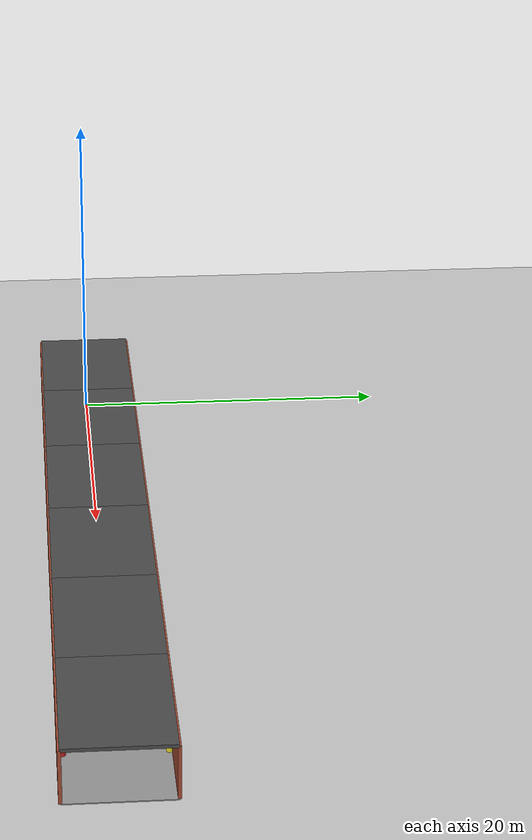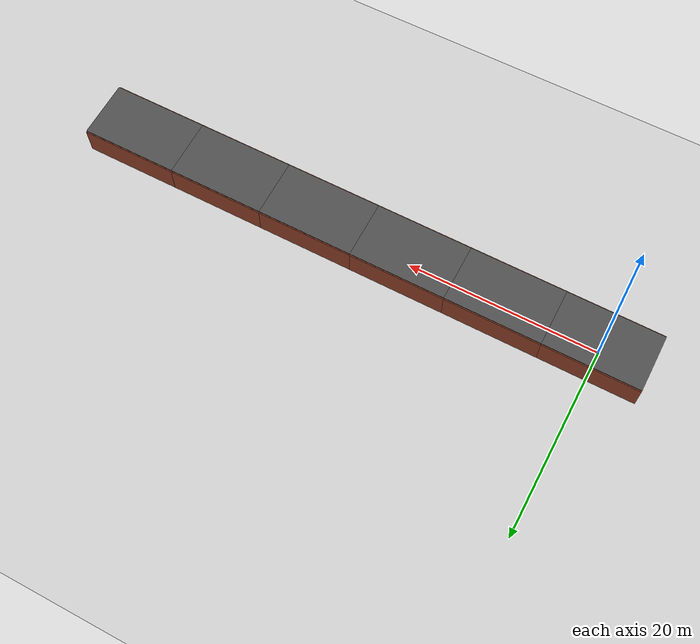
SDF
<sdf version="1.6">
 <world name="tunnel_innovation">
  <include><uri>model://ground_plane</uri></include>
  <model name="segment_0">
   <static>true</static>
   <link name="link">
    <light name="lamp_0" type="point">
     <pose>0 0 2.5 0 0 0</pose>
     <diffuse>0.9 0.9 0.9 1</diffuse>
     <attenuation><range>15</range><constant>0.5</constant></attenuation>
    </light>
    <collision name="floor"><geometry><box><size>10 6 0.2</size></box></geometry></collision>
    <visual name="floor">
     <pose>0 0 -0.1 0 0 0</pose>
     <geometry><box><size>10 6 0.2</size></box></geometry>
     <material>
      <script><uri>file://media/materials/scripts/gazebo.material</uri><name>Gazebo/Grey</name></script>
     </material>
    </visual>
    <visual name="roof">
     <pose>0 0 3.0 0 0 0</pose>
     <geometry><box><size>10 6 0.2</size></box></geometry>
     <material>
      <script><uri>file://media/materials/scripts/gazebo.material</uri><name>Gazebo/DarkGrey</name></script>
     </material>
    </visual>
    <visual name="wall_l">
     <pose>0 3 1.5 0 0 0</pose>
     <geometry><box><size>10 0.2 3</size></box></geometry>
     <material>
      <script><uri>file://media/materials/scripts/gazebo.material</uri><name>Gazebo/Bricks</name></script>
     </material>
    </visual>
    <visual name="wall_r">
     <pose>0 -3 1.5 0 0 0</pose>
     <geometry><box><size>10 0.2 3</size></box></geometry>
     <material>
      <script><uri>file://media/materials/scripts/gazebo.material</uri><name>Gazebo/Bricks</name></script>
     </material>
    </visual>
    <visual name="pillar_l">
     <pose>0 2.8 1.5 0 0 0</pose>
     <geometry><cylinder><radius>0.2</radius><length>3</length></cylinder></geometry>
     <material>
      <script><uri>file://media/materials/scripts/gazebo.material</uri><name>Gazebo/Yellow</name></script>
     </material>
    </visual>
    <visual name="pillar_r">
     <pose>0 -2.8 1.5 0 0 0</pose>
     <geometry><cylinder><radius>0.2</radius><length>3</length></cylinder></geometry>
     <material>
      <script><uri>file://media/materials/scripts/gazebo.material</uri><name>Gazebo/Yellow</name></script>
     </material>
    </visual>
   </link>
  </model>
  <model name="segment_1">
   <static>true</static>
   <pose>10 0 0 0 0 0</pose>
   <link name="link">
    <light name="lamp_1" type="point">
     <pose>0 0 2.5 0 0 0</pose>
     <diffuse>0.9 0.9 0.9 1</diffuse>
     <attenuation><range>15</range><constant>0.5</constant></attenuation>
    </light>
    <collision name="floor"><geometry><box><size>10 6 0.2</size></box></geometry></collision>
    <visual name="floor">
     <pose>0 0 -0.1 0 0 0</pose>
     <geometry><box><size>10 6 0.2</size></box></geometry>
     <material>
      <script><uri>file://media/materials/scripts/gazebo.material</uri><name>Gazebo/Grey</name></script>
     </material>
    </visual>
    <visual name="roof">
     <pose>0 0 3.0 0 0 0</pose>
     <geometry><box><size>10 6 0.2</size></box></geometry>
     <material>
      <script><uri>file://media/materials/scripts/gazebo.material</uri><name>Gazebo/DarkGrey</name></script>
     </material>
    </visual>
    <visual name="wall_l">
     <pose>0 3 1.5 0 0 0</pose>
     <geometry><box><size>10 0.2 3</size></box></geometry>
     <material>
      <script><uri>file://media/materials/scripts/gazebo.material</uri><name>Gazebo/Bricks</name></script>
     </material>
    </visual>
    <visual name="wall_r">
     <pose>0 -3 1.5 0 0 0</pose>
     <geometry><box><size>10 0.2 3</size></box></geometry>
     <material>
      <script><uri>file://media/materials/scripts/gazebo.material</uri><name>Gazebo/Bricks</name></script>
     </material>
    </visual>
    <visual name="pillar_l">
     <pose>0 2.8 1.5 0 0 0</pose>
     <geometry><cylinder><radius>0.2</radius><length>3</length></cylinder></geometry>
     <material>
      <script><uri>file://media/materials/scripts/gazebo.material</uri><name>Gazebo/Yellow</name></script>
     </material>
    </visual>
    <visual name="pillar_r">
     <pose>0 -2.8 1.5 0 0 0</pose>
     <geometry><cylinder><radius>0.2</radius><length>3</length></cylinder></geometry>
     <material>
      <script><uri>file://media/materials/scripts/gazebo.material</uri><name>Gazebo/Red</name></script>
     </material>
    </visual>
   </link>
  </model>
  <model name="segment_2">
   <static>true</static>
   <pose>20 0 0 0 0 0</pose>
   <link name="link">
    <light name="lamp_2" type="point">
     <pose>0 0 2.5 0 0 0</pose>
     <diffuse>0.9 0.9 0.9 1</diffuse>
     <attenuation><range>15</range><constant>0.5</constant></attenuation>
    </light>
    <collision name="floor"><geometry><box><size>10 6 0.2</size></box></geometry></collision>
    <visual name="floor">
     <pose>0 0 -0.1 0 0 0</pose>
     <geometry><box><size>10 6 0.2</size></box></geometry>
     <material>
      <script><uri>file://media/materials/scripts/gazebo.material</uri><name>Gazebo/Grey</name></script>
     </material>
    </visual>
    <visual name="roof">
     <pose>0 0 3.0 0 0 0</pose>
     <geometry><box><size>10 6 0.2</size></box></geometry>
     <material>
      <script><uri>file://media/materials/scripts/gazebo.material</uri><name>Gazebo/DarkGrey</name></script>
     </material>
    </visual>
    <visual name="wall_l">
     <pose>0 3 1.5 0 0 0</pose>
     <geometry><box><size>10 0.2 3</size></box></geometry>
     <material>
      <script><uri>file://media/materials/scripts/gazebo.material</uri><name>Gazebo/Bricks</name></script>
     </material>
    </visual>
    <visual name="wall_r">
     <pose>0 -3 1.5 0 0 0</pose>
     <geometry><box><size>10 0.2 3</size></box></geometry>
     <material>
      <script><uri>file://media/materials/scripts/gazebo.material</uri><name>Gazebo/Bricks</name></script>
     </material>
    </visual>
    <visual name="pillar_l">
     <pose>0 2.8 1.5 0 0 0</pose>
     <geometry><cylinder><radius>0.2</radius><length>3</length></cylinder></geometry>
     <material>
      <script><uri>file://media/materials/scripts/gazebo.material</uri><name>Gazebo/Yellow</name></script>
     </material>
    </visual>
    <visual name="pillar_r">
     <pose>0 -2.8 1.5 0 0 0</pose>
     <geometry><cylinder><radius>0.2</radius><length>3</length></cylinder></geometry>
     <material>
      <script><uri>file://media/materials/scripts/gazebo.material</uri><name>Gazebo/Yellow</name></script>
     </material>
    </visual>
   </link>
  </model>
  <model name="segment_3">
   <static>true</static>
   <pose>30 0 0 0 0 0</pose>
   <link name="link">
    <light name="lamp_3" type="point">
     <pose>0 0 2.5 0 0 0</pose>
     <diffuse>0.9 0.9 0.9 1</diffuse>
     <attenuation><range>15</range><constant>0.5</constant></attenuation>
    </light>
    <collision name="floor"><geometry><box><size>10 6 0.2</size></box></geometry></collision>
    <visual name="floor">
     <pose>0 0 -0.1 0 0 0</pose>
     <geometry><box><size>10 6 0.2</size></box></geometry>
     <material>
      <script><uri>file://media/materials/scripts/gazebo.material</uri><name>Gazebo/Grey</name></script>
     </material>
    </visual>
    <visual name="roof">
     <pose>0 0 3.0 0 0 0</pose>
     <geometry><box><size>10 6 0.2</size></box></geometry>
     <material>
      <script><uri>file://media/materials/scripts/gazebo.material</uri><name>Gazebo/DarkGrey</name></script>
     </material>
    </visual>
    <visual name="wall_l">
     <pose>0 3 1.5 0 0 0</pose>
     <geometry><box><size>10 0.2 3</size></box></geometry>
     <material>
      <script><uri>file://media/materials/scripts/gazebo.material</uri><name>Gazebo/Bricks</name></script>
     </material>
    </visual>
    <visual name="wall_r">
     <pose>0 -3 1.5 0 0 0</pose>
     <geometry><box><size>10 0.2 3</size></box></geometry>
     <material>
      <script><uri>file://media/materials/scripts/gazebo.material</uri><name>Gazebo/Bricks</name></script>
     </material>
    </visual>
    <visual name="pillar_l">
     <pose>0 2.8 1.5 0 0 0</pose>
     <geometry><cylinder><radius>0.2</radius><length>3</length></cylinder></geometry>
     <material>
      <script><uri>file://media/materials/scripts/gazebo.material</uri><name>Gazebo/Yellow</name></script>
     </material>
    </visual>
    <visual name="pillar_r">
     <pose>0 -2.8 1.5 0 0 0</pose>
     <geometry><cylinder><radius>0.2</radius><length>3</length></cylinder></geometry>
     <material>
      <script><uri>file://media/materials/scripts/gazebo.material</uri><name>Gazebo/Red</name></script>
     </material>
    </visual>
   </link>
  </model>
  <model name="segment_4">
   <static>true</static>
   <pose>40 0 0 0 0 0</pose>
   <link name="link">
    <light name="lamp_4" type="point">
     <pose>0 0 2.5 0 0 0</pose>
     <diffuse>0.9 0.9 0.9 1</diffuse>
     <attenuation><range>15</range><constant>0.5</constant></attenuation>
    </light>
    <collision name="floor"><geometry><box><size>10 6 0.2</size></box></geometry></collision>
    <visual name="floor">
     <pose>0 0 -0.1 0 0 0</pose>
     <geometry><box><size>10 6 0.2</size></box></geometry>
     <material>
      <script><uri>file://media/materials/scripts/gazebo.material</uri><name>Gazebo/Grey</name></script>
     </material>
    </visual>
    <visual name="roof">
     <pose>0 0 3.0 0 0 0</pose>
     <geometry><box><size>10 6 0.2</size></box></geometry>
     <material>
      <script><uri>file://media/materials/scripts/gazebo.material</uri><name>Gazebo/DarkGrey</name></script>
     </material>
    </visual>
    <visual name="wall_l">
     <pose>0 3 1.5 0 0 0</pose>
     <geometry><box><size>10 0.2 3</size></box></geometry>
     <material>
      <script><uri>file://media/materials/scripts/gazebo.material</uri><name>Gazebo/Bricks</name></script>
     </material>
    </visual>
    <visual name="wall_r">
     <pose>0 -3 1.5 0 0 0</pose>
     <geometry><box><size>10 0.2 3</size></box></geometry>
     <material>
      <script><uri>file://media/materials/scripts/gazebo.material</uri><name>Gazebo/Bricks</name></script>
     </material>
    </visual>
    <visual name="pillar_l">
     <pose>0 2.8 1.5 0 0 0</pose>
     <geometry><cylinder><radius>0.2</radius><length>3</length></cylinder></geometry>
     <material>
      <script><uri>file://media/materials/scripts/gazebo.material</uri><name>Gazebo/Yellow</name></script>
     </material>
    </visual>
    <visual name="pillar_r">
     <pose>0 -2.8 1.5 0 0 0</pose>
     <geometry><cylinder><radius>0.2</radius><length>3</length></cylinder></geometry>
     <material>
      <script><uri>file://media/materials/scripts/gazebo.material</uri><name>Gazebo/Yellow</name></script>
     </material>
    </visual>
   </link>
  </model>
  <model name="segment_5">
   <static>true</static>
   <pose>50 0 0 0 0 0</pose>
   <link name="link">
    <light name="lamp_5" type="point">
     <pose>0 0 2.5 0 0 0</pose>
     <diffuse>0.9 0.9 0.9 1</diffuse>
     <attenuation><range>15</range><constant>0.5</constant></attenuation>
    </light>
    <collision name="floor"><geometry><box><size>10 6 0.2</size></box></geometry></collision>
    <visual name="floor">
     <pose>0 0 -0.1 0 0 0</pose>
     <geometry><box><size>10 6 0.2</size></box></geometry>
     <material>
      <script><uri>file://media/materials/scripts/gazebo.material</uri><name>Gazebo/Grey</name></script>
     </material>
    </visual>
    <visual name="roof">
     <pose>0 0 3.0 0 0 0</pose>
     <geometry><box><size>10 6 0.2</size></box></geometry>
     <material>
      <script><uri>file://media/materials/scripts/gazebo.material</uri><name>Gazebo/DarkGrey</name></script>
     </material>
    </visual>
    <visual name="wall_l">
     <pose>0 3 1.5 0 0 0</pose>
     <geometry><box><size>10 0.2 3</size></box></geometry>
     <material>
      <script><uri>file://media/materials/scripts/gazebo.material</uri><name>Gazebo/Bricks</name></script>
     </material>
    </visual>
    <visual name="wall_r">
     <pose>0 -3 1.5 0 0 0</pose>
     <geometry><box><size>10 0.2 3</size></box></geometry>
     <material>
      <script><uri>file://media/materials/scripts/gazebo.material</uri><name>Gazebo/Bricks</name></script>
     </material>
    </visual>
    <visual name="pillar_l">
     <pose>0 2.8 1.5 0 0 0</pose>
     <geometry><cylinder><radius>0.2</radius><length>3</length></cylinder></geometry>
     <material>
      <script><uri>file://media/materials/scripts/gazebo.material</uri><name>Gazebo/Yellow</name></script>
     </material>
    </visual>
    <visual name="pillar_r">
     <pose>0 -2.8 1.5 0 0 0</pose>
     <geometry><cylinder><radius>0.2</radius><length>3</length></cylinder></geometry>
     <material>
      <script><uri>file://media/materials/scripts/gazebo.material</uri><name>Gazebo/Red</name></script>
     </material>
    </visual>
   </link>
  </model>
 </world>
</sdf>
